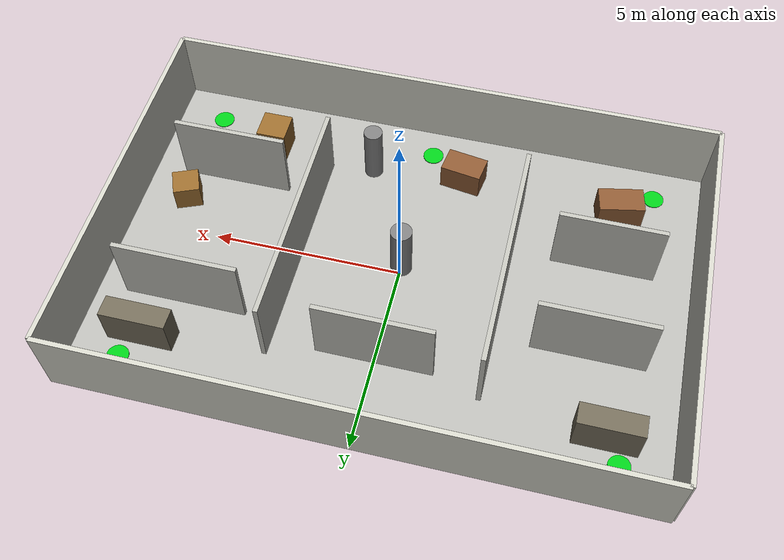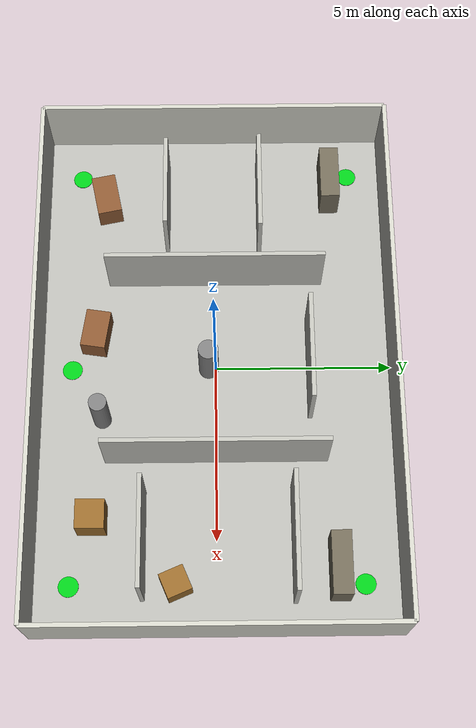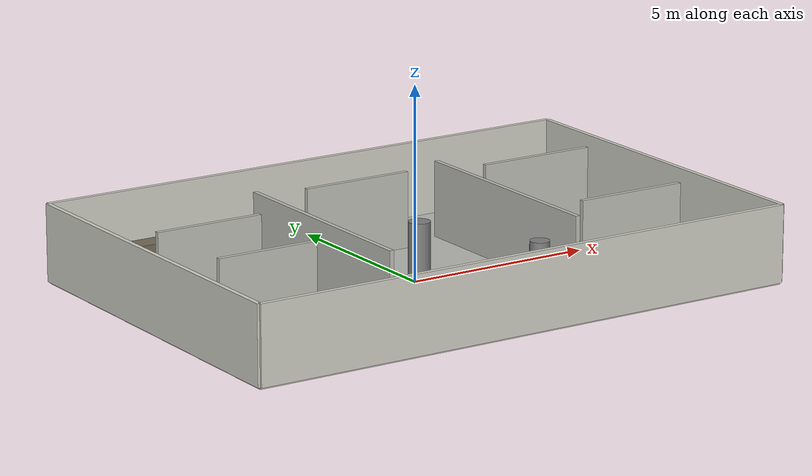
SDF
<?xml version="1.0" ?>
<sdf version="1.6">
  <world name="emrmf_indoor">
    <!-- Gazebo Classic + ROS 2 Humble integration plugins. -->
    <plugin name="gazebo_ros_init" filename="libgazebo_ros_init.so"/>
    <plugin name="gazebo_ros_factory" filename="libgazebo_ros_factory.so"/>

    <gravity>0 0 -9.8</gravity>
    <scene>
      <ambient>0.45 0.45 0.45 1</ambient>
      <background>0.70 0.72 0.76 1</background>
      <shadows>true</shadows>
    </scene>

    <!-- Lighting: one sun source plus two office/warehouse ceiling lights. -->
    <include>
      <uri>model://sun</uri>
    </include>
    <light name="ceiling_light_west" type="point">
      <pose>-3.75 0 3.0 0 0 0</pose>
      <diffuse>0.85 0.85 0.78 1</diffuse>
      <specular>0.15 0.15 0.12 1</specular>
      <attenuation><range>9</range><constant>0.6</constant><linear>0.02</linear><quadratic>0.001</quadratic></attenuation>
    </light>
    <light name="ceiling_light_east" type="point">
      <pose>3.75 0 3.0 0 0 0</pose>
      <diffuse>0.85 0.85 0.78 1</diffuse>
      <specular>0.15 0.15 0.12 1</specular>
      <attenuation><range>9</range><constant>0.6</constant><linear>0.02</linear><quadratic>0.001</quadratic></attenuation>
    </light>

    <!-- Approximate 15 m x 10 m ground plane. -->
    <model name="ground_plane">
      <static>true</static>
      <pose>0 0 -0.025 0 0 0</pose>
      <link name="link">
        <collision name="collision"><geometry><box><size>15 10 0.05</size></box></geometry></collision>
        <visual name="visual">
          <geometry><box><size>15 10 0.05</size></box></geometry>
          <material><ambient>0.72 0.72 0.70 1</ambient><diffuse>0.72 0.72 0.70 1</diffuse></material>
        </visual>
      </link>
    </model>

    <!-- Outer walls for the 15 m x 10 m indoor office/warehouse footprint. -->
    <model name="wall_north"><static>true</static><pose>0 5 1 0 0 0</pose><link name="link"><collision name="collision"><geometry><box><size>15 0.12 2</size></box></geometry></collision><visual name="visual"><geometry><box><size>15 0.12 2</size></box></geometry><material><ambient>0.82 0.82 0.78 1</ambient><diffuse>0.82 0.82 0.78 1</diffuse></material></visual></link></model>
    <model name="wall_south"><static>true</static><pose>0 -5 1 0 0 0</pose><link name="link"><collision name="collision"><geometry><box><size>15 0.12 2</size></box></geometry></collision><visual name="visual"><geometry><box><size>15 0.12 2</size></box></geometry><material><ambient>0.82 0.82 0.78 1</ambient><diffuse>0.82 0.82 0.78 1</diffuse></material></visual></link></model>
    <model name="wall_east"><static>true</static><pose>7.5 0 1 0 0 0</pose><link name="link"><collision name="collision"><geometry><box><size>0.12 10 2</size></box></geometry></collision><visual name="visual"><geometry><box><size>0.12 10 2</size></box></geometry><material><ambient>0.82 0.82 0.78 1</ambient><diffuse>0.82 0.82 0.78 1</diffuse></material></visual></link></model>
    <model name="wall_west"><static>true</static><pose>-7.5 0 1 0 0 0</pose><link name="link"><collision name="collision"><geometry><box><size>0.12 10 2</size></box></geometry></collision><visual name="visual"><geometry><box><size>0.12 10 2</size></box></geometry><material><ambient>0.82 0.82 0.78 1</ambient><diffuse>0.82 0.82 0.78 1</diffuse></material></visual></link></model>

    <!-- Interior layout: multiple rooms connected through central corridors and door gaps. -->
    <model name="center_corridor_west_wall"><static>true</static><pose>-2.7 0 1 0 0 0</pose><link name="link"><collision name="collision"><geometry><box><size>0.12 6.2 2</size></box></geometry></collision><visual name="visual"><geometry><box><size>0.12 6.2 2</size></box></geometry><material><ambient>0.75 0.75 0.72 1</ambient><diffuse>0.75 0.75 0.72 1</diffuse></material></visual></link></model>
    <model name="center_corridor_east_wall"><static>true</static><pose>2.7 0 1 0 0 0</pose><link name="link"><collision name="collision"><geometry><box><size>0.12 6.2 2</size></box></geometry></collision><visual name="visual"><geometry><box><size>0.12 6.2 2</size></box></geometry><material><ambient>0.75 0.75 0.72 1</ambient><diffuse>0.75 0.75 0.72 1</diffuse></material></visual></link></model>
    <model name="north_room_split_left"><static>true</static><pose>-5.1 1.3 1 0 0 1.5708</pose><link name="link"><collision name="collision"><geometry><box><size>0.12 2.9 2</size></box></geometry></collision><visual name="visual"><geometry><box><size>0.12 2.9 2</size></box></geometry><material><ambient>0.75 0.75 0.72 1</ambient><diffuse>0.75 0.75 0.72 1</diffuse></material></visual></link></model>
    <model name="south_room_split_left"><static>true</static><pose>-5.1 -1.4 1 0 0 1.5708</pose><link name="link"><collision name="collision"><geometry><box><size>0.12 2.7 2</size></box></geometry></collision><visual name="visual"><geometry><box><size>0.12 2.7 2</size></box></geometry><material><ambient>0.75 0.75 0.72 1</ambient><diffuse>0.75 0.75 0.72 1</diffuse></material></visual></link></model>
    <model name="warehouse_partition_east_north"><static>true</static><pose>5.1 2.1 1 0 0 1.5708</pose><link name="link"><collision name="collision"><geometry><box><size>0.12 3.2 2</size></box></geometry></collision><visual name="visual"><geometry><box><size>0.12 3.2 2</size></box></geometry><material><ambient>0.75 0.75 0.72 1</ambient><diffuse>0.75 0.75 0.72 1</diffuse></material></visual></link></model>
    <model name="warehouse_partition_east_south"><static>true</static><pose>5.1 -2.0 1 0 0 1.5708</pose><link name="link"><collision name="collision"><geometry><box><size>0.12 3.0 2</size></box></geometry></collision><visual name="visual"><geometry><box><size>0.12 3.0 2</size></box></geometry><material><ambient>0.75 0.75 0.72 1</ambient><diffuse>0.75 0.75 0.72 1</diffuse></material></visual></link></model>
    <model name="short_corridor_barrier"><static>true</static><pose>0 2.65 1 0 0 1.5708</pose><link name="link"><collision name="collision"><geometry><box><size>0.12 3.0 2</size></box></geometry></collision><visual name="visual"><geometry><box><size>0.12 3.0 2</size></box></geometry><material><ambient>0.75 0.75 0.72 1</ambient><diffuse>0.75 0.75 0.72 1</diffuse></material></visual></link></model>

    <!-- Static SLAM landmarks and obstacles: warehouse racks, desks, crates, and pillars. -->
    <model name="rack_west"><static>true</static><pose>-5.8 3.4 0.55 0 0 0</pose><link name="link"><collision name="collision"><geometry><box><size>1.6 0.55 1.1</size></box></geometry></collision><visual name="visual"><geometry><box><size>1.6 0.55 1.1</size></box></geometry><material><ambient>0.45 0.42 0.35 1</ambient><diffuse>0.45 0.42 0.35 1</diffuse></material></visual></link></model>
    <model name="rack_east"><static>true</static><pose>5.8 3.3 0.55 0 0 0</pose><link name="link"><collision name="collision"><geometry><box><size>1.7 0.55 1.1</size></box></geometry></collision><visual name="visual"><geometry><box><size>1.7 0.55 1.1</size></box></geometry><material><ambient>0.45 0.42 0.35 1</ambient><diffuse>0.45 0.42 0.35 1</diffuse></material></visual></link></model>
    <model name="desk_room_a"><static>true</static><pose>-5.3 -3.2 0.38 0 0 0.2</pose><link name="link"><collision name="collision"><geometry><box><size>1.2 0.7 0.75</size></box></geometry></collision><visual name="visual"><geometry><box><size>1.2 0.7 0.75</size></box></geometry><material><ambient>0.55 0.35 0.20 1</ambient><diffuse>0.55 0.35 0.20 1</diffuse></material></visual></link></model>
    <model name="desk_room_b"><static>true</static><pose>-1.0 -3.4 0.38 0 0 -0.15</pose><link name="link"><collision name="collision"><geometry><box><size>1.1 0.7 0.75</size></box></geometry></collision><visual name="visual"><geometry><box><size>1.1 0.7 0.75</size></box></geometry><material><ambient>0.55 0.35 0.20 1</ambient><diffuse>0.55 0.35 0.20 1</diffuse></material></visual></link></model>
    <model name="crate_stack_1"><static>true</static><pose>4.4 -3.4 0.45 0 0 0</pose><link name="link"><collision name="collision"><geometry><box><size>0.8 0.8 0.9</size></box></geometry></collision><visual name="visual"><geometry><box><size>0.8 0.8 0.9</size></box></geometry><material><ambient>0.60 0.42 0.18 1</ambient><diffuse>0.60 0.42 0.18 1</diffuse></material></visual></link></model>
    <model name="crate_stack_2"><static>true</static><pose>6.2 -1.1 0.35 0 0 0.4</pose><link name="link"><collision name="collision"><geometry><box><size>0.7 0.7 0.7</size></box></geometry></collision><visual name="visual"><geometry><box><size>0.7 0.7 0.7</size></box></geometry><material><ambient>0.60 0.42 0.18 1</ambient><diffuse>0.60 0.42 0.18 1</diffuse></material></visual></link></model>
    <model name="pillar_center"><static>true</static><pose>0.0 -0.2 0.8 0 0 0</pose><link name="link"><collision name="collision"><geometry><cylinder><radius>0.28</radius><length>1.6</length></cylinder></geometry></collision><visual name="visual"><geometry><cylinder><radius>0.28</radius><length>1.6</length></cylinder></geometry><material><ambient>0.50 0.50 0.50 1</ambient><diffuse>0.50 0.50 0.50 1</diffuse></material></visual></link></model>
    <model name="pillar_south"><static>true</static><pose>1.5 -3.2 0.8 0 0 0</pose><link name="link"><collision name="collision"><geometry><cylinder><radius>0.25</radius><length>1.6</length></cylinder></geometry></collision><visual name="visual"><geometry><cylinder><radius>0.25</radius><length>1.6</length></cylinder></geometry><material><ambient>0.50 0.50 0.50 1</ambient><diffuse>0.50 0.50 0.50 1</diffuse></material></visual></link></model>

    <!-- Robot spawn locations, kept collision-free for 2, 3, 4, and 5 robot experiments. -->
    <model name="robot_spawn_1"><static>true</static><pose>-6.2 -4.0 0.01 0 0 0</pose><link name="link"><visual name="visual"><geometry><cylinder><radius>0.28</radius><length>0.02</length></cylinder></geometry><material><ambient>0.0 0.8 0.1 1</ambient><diffuse>0.0 0.8 0.1 1</diffuse></material></visual></link></model>
    <model name="robot_spawn_2"><static>true</static><pose>-6.2 4.0 0.01 0 0 0</pose><link name="link"><visual name="visual"><geometry><cylinder><radius>0.28</radius><length>0.02</length></cylinder></geometry><material><ambient>0.0 0.8 0.1 1</ambient><diffuse>0.0 0.8 0.1 1</diffuse></material></visual></link></model>
    <model name="robot_spawn_3"><static>true</static><pose>6.2 -4.0 0.01 0 0 0</pose><link name="link"><visual name="visual"><geometry><cylinder><radius>0.28</radius><length>0.02</length></cylinder></geometry><material><ambient>0.0 0.8 0.1 1</ambient><diffuse>0.0 0.8 0.1 1</diffuse></material></visual></link></model>
    <model name="robot_spawn_4"><static>true</static><pose>6.2 4.0 0.01 0 0 0</pose><link name="link"><visual name="visual"><geometry><cylinder><radius>0.28</radius><length>0.02</length></cylinder></geometry><material><ambient>0.0 0.8 0.1 1</ambient><diffuse>0.0 0.8 0.1 1</diffuse></material></visual></link></model>
    <model name="robot_spawn_5"><static>true</static><pose>0.0 -4.1 0.01 0 0 0</pose><link name="link"><visual name="visual"><geometry><cylinder><radius>0.28</radius><length>0.02</length></cylinder></geometry><material><ambient>0.0 0.8 0.1 1</ambient><diffuse>0.0 0.8 0.1 1</diffuse></material></visual></link></model>
  </world>
</sdf>
